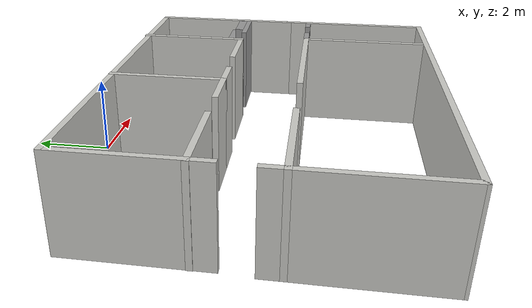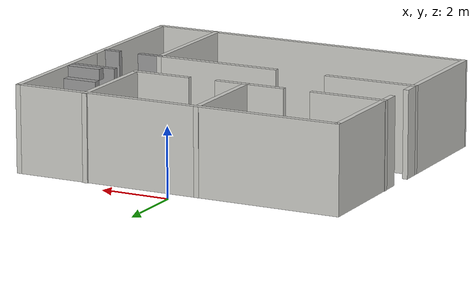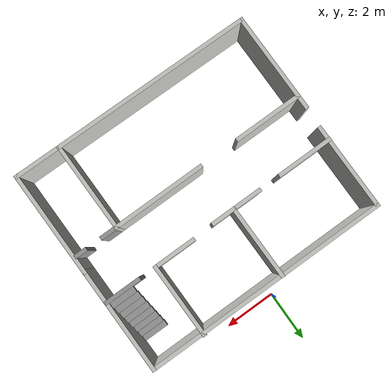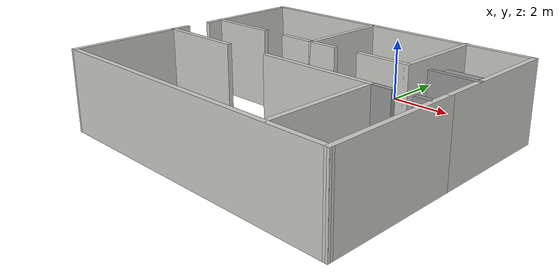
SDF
<?xml version='1.0'?>
<sdf version='1.6'>
  <model name='hospital'>
    <pose frame=''>0.053193 -4.63678 0 0 -0 0</pose>
    <link name='Stairs_4'>
      <visual name='Stairs_4_Visual_0'>
        <pose frame=''>4.23681 3.12803 0.15625 0 -0 0</pose>
        <geometry>
          <box>
            <size>1 0.2375 0.3125</size>
          </box>
        </geometry>
        <material>
          <script>
            <uri>file://media/materials/scripts/gazebo.material</uri>
            <name>Gazebo/Grey</name>
          </script>
          <ambient>1 1 1 1</ambient>
        </material>
        <meta>
          <layer>0</layer>
        </meta>
      </visual>
      <collision name='Stairs_4_Collision_0'>
        <geometry>
          <box>
            <size>1 0.2375 0.3125</size>
          </box>
        </geometry>
        <pose frame=''>4.23681 3.12803 0.15625 0 -0 0</pose>
      </collision>
      <visual name='Stairs_4_Visual_1'>
        <pose frame=''>4.23681 2.89053 0.46875 0 -0 0</pose>
        <geometry>
          <box>
            <size>1 0.2375 0.3125</size>
          </box>
        </geometry>
        <material>
          <script>
            <uri>file://media/materials/scripts/gazebo.material</uri>
            <name>Gazebo/Grey</name>
          </script>
          <ambient>1 1 1 1</ambient>
        </material>
        <meta>
          <layer>0</layer>
        </meta>
      </visual>
      <collision name='Stairs_4_Collision_1'>
        <geometry>
          <box>
            <size>1 0.2375 0.3125</size>
          </box>
        </geometry>
        <pose frame=''>4.23681 2.89053 0.46875 0 -0 0</pose>
      </collision>
      <visual name='Stairs_4_Visual_2'>
        <pose frame=''>4.23681 2.65303 0.78125 0 -0 0</pose>
        <geometry>
          <box>
            <size>1 0.2375 0.3125</size>
          </box>
        </geometry>
        <material>
          <script>
            <uri>file://media/materials/scripts/gazebo.material</uri>
            <name>Gazebo/Grey</name>
          </script>
          <ambient>1 1 1 1</ambient>
        </material>
        <meta>
          <layer>0</layer>
        </meta>
      </visual>
      <collision name='Stairs_4_Collision_2'>
        <geometry>
          <box>
            <size>1 0.2375 0.3125</size>
          </box>
        </geometry>
        <pose frame=''>4.23681 2.65303 0.78125 0 -0 0</pose>
      </collision>
      <visual name='Stairs_4_Visual_3'>
        <pose frame=''>4.23681 2.41553 1.09375 0 -0 0</pose>
        <geometry>
          <box>
            <size>1 0.2375 0.3125</size>
          </box>
        </geometry>
        <material>
          <script>
            <uri>file://media/materials/scripts/gazebo.material</uri>
            <name>Gazebo/Grey</name>
          </script>
          <ambient>1 1 1 1</ambient>
        </material>
        <meta>
          <layer>0</layer>
        </meta>
      </visual>
      <collision name='Stairs_4_Collision_3'>
        <geometry>
          <box>
            <size>1 0.2375 0.3125</size>
          </box>
        </geometry>
        <pose frame=''>4.23681 2.41553 1.09375 0 -0 0</pose>
      </collision>
      <visual name='Stairs_4_Visual_4'>
        <pose frame=''>4.23681 2.17803 1.40625 0 -0 0</pose>
        <geometry>
          <box>
            <size>1 0.2375 0.3125</size>
          </box>
        </geometry>
        <material>
          <script>
            <uri>file://media/materials/scripts/gazebo.material</uri>
            <name>Gazebo/Grey</name>
          </script>
          <ambient>1 1 1 1</ambient>
        </material>
        <meta>
          <layer>0</layer>
        </meta>
      </visual>
      <collision name='Stairs_4_Collision_4'>
        <geometry>
          <box>
            <size>1 0.2375 0.3125</size>
          </box>
        </geometry>
        <pose frame=''>4.23681 2.17803 1.40625 0 -0 0</pose>
      </collision>
      <visual name='Stairs_4_Visual_5'>
        <pose frame=''>4.23681 1.94053 1.71875 0 -0 0</pose>
        <geometry>
          <box>
            <size>1 0.2375 0.3125</size>
          </box>
        </geometry>
        <material>
          <script>
            <uri>file://media/materials/scripts/gazebo.material</uri>
            <name>Gazebo/Grey</name>
          </script>
          <ambient>1 1 1 1</ambient>
        </material>
        <meta>
          <layer>0</layer>
        </meta>
      </visual>
      <collision name='Stairs_4_Collision_5'>
        <geometry>
          <box>
            <size>1 0.2375 0.3125</size>
          </box>
        </geometry>
        <pose frame=''>4.23681 1.94053 1.71875 0 -0 0</pose>
      </collision>
      <visual name='Stairs_4_Visual_6'>
        <pose frame=''>4.23681 1.70303 2.03125 0 -0 0</pose>
        <geometry>
          <box>
            <size>1 0.2375 0.3125</size>
          </box>
        </geometry>
        <material>
          <script>
            <uri>file://media/materials/scripts/gazebo.material</uri>
            <name>Gazebo/Grey</name>
          </script>
          <ambient>1 1 1 1</ambient>
        </material>
        <meta>
          <layer>0</layer>
        </meta>
      </visual>
      <collision name='Stairs_4_Collision_6'>
        <geometry>
          <box>
            <size>1 0.2375 0.3125</size>
          </box>
        </geometry>
        <pose frame=''>4.23681 1.70303 2.03125 0 -0 0</pose>
      </collision>
      <visual name='Stairs_4_Visual_7'>
        <pose frame=''>4.23681 1.46553 2.34375 0 -0 0</pose>
        <geometry>
          <box>
            <size>1 0.2375 0.3125</size>
          </box>
        </geometry>
        <material>
          <script>
            <uri>file://media/materials/scripts/gazebo.material</uri>
            <name>Gazebo/Grey</name>
          </script>
          <ambient>1 1 1 1</ambient>
        </material>
        <meta>
          <layer>0</layer>
        </meta>
      </visual>
      <collision name='Stairs_4_Collision_7'>
        <geometry>
          <box>
            <size>1 0.2375 0.3125</size>
          </box>
        </geometry>
        <pose frame=''>4.23681 1.46553 2.34375 0 -0 0</pose>
      </collision>
    </link>
    <link name='Wall_104'>
      <collision name='Wall_104_Collision'>
        <geometry>
          <box>
            <size>2.25 0.15 2.5</size>
          </box>
        </geometry>
        <pose frame=''>0 0 1.25 0 -0 0</pose>
      </collision>
      <visual name='Wall_104_Visual'>
        <pose frame=''>0 0 1.25 0 -0 0</pose>
        <geometry>
          <box>
            <size>2.25 0.15 2.5</size>
          </box>
        </geometry>
        <material>
          <script>
            <uri>file://media/materials/scripts/gazebo.material</uri>
            <name>Gazebo/CeilingTiled</name>
          </script>
          <ambient>1 1 1 1</ambient>
        </material>
        <meta>
          <layer>0</layer>
        </meta>
      </visual>
      <pose frame=''>-3.73681 1.23405 0 0 -0 0</pose>
    </link>
    <link name='Wall_106'>
      <collision name='Wall_106_Collision'>
        <geometry>
          <box>
            <size>1.25 0.15 2.5</size>
          </box>
        </geometry>
        <pose frame=''>0 0 1.25 0 -0 0</pose>
      </collision>
      <visual name='Wall_106_Visual'>
        <pose frame=''>0 0 1.25 0 -0 0</pose>
        <geometry>
          <box>
            <size>1.25 0.15 2.5</size>
          </box>
        </geometry>
        <material>
          <script>
            <uri>file://media/materials/scripts/gazebo.material</uri>
            <name>Gazebo/CeilingTiled</name>
          </script>
          <ambient>1 1 1 1</ambient>
        </material>
        <meta>
          <layer>0</layer>
        </meta>
      </visual>
      <pose frame=''>-1.19681 1.23405 0 0 -0 0</pose>
    </link>
    <link name='Wall_107'>
      <collision name='Wall_107_Collision'>
        <geometry>
          <box>
            <size>3 0.15 2.5</size>
          </box>
        </geometry>
        <pose frame=''>0 0 1.25 0 -0 0</pose>
      </collision>
      <visual name='Wall_107_Visual'>
        <pose frame=''>0 0 1.25 0 -0 0</pose>
        <geometry>
          <box>
            <size>3 0.15 2.5</size>
          </box>
        </geometry>
        <material>
          <script>
            <uri>file://media/materials/scripts/gazebo.material</uri>
            <name>Gazebo/CeilingTiled</name>
          </script>
          <ambient>1 1 1 1</ambient>
        </material>
        <meta>
          <layer>0</layer>
        </meta>
      </visual>
      <pose frame=''>-0.646807 2.65905 0 0 -0 1.5708</pose>
    </link>
    <link name='Wall_109'>
      <collision name='Wall_109_Collision'>
        <geometry>
          <box>
            <size>1 0.15 2.5</size>
          </box>
        </geometry>
        <pose frame=''>0 0 1.25 0 -0 0</pose>
      </collision>
      <visual name='Wall_109_Visual'>
        <pose frame=''>0 0 1.25 0 -0 0</pose>
        <geometry>
          <box>
            <size>1 0.15 2.5</size>
          </box>
        </geometry>
        <material>
          <script>
            <uri>file://media/materials/scripts/gazebo.material</uri>
            <name>Gazebo/CeilingTiled</name>
          </script>
          <ambient>1 1 1 1</ambient>
        </material>
        <meta>
          <layer>0</layer>
        </meta>
      </visual>
      <pose frame=''>-0.221807 1.23405 0 0 -0 0</pose>
    </link>
    <link name='Wall_111'>
      <collision name='Wall_111_Collision'>
        <geometry>
          <box>
            <size>1.75 0.15 2.5</size>
          </box>
        </geometry>
        <pose frame=''>0 0 1.25 0 -0 0</pose>
      </collision>
      <visual name='Wall_111_Visual'>
        <pose frame=''>0 0 1.25 0 -0 0</pose>
        <geometry>
          <box>
            <size>1.75 0.15 2.5</size>
          </box>
        </geometry>
        <material>
          <script>
            <uri>file://media/materials/scripts/gazebo.material</uri>
            <name>Gazebo/CeilingTiled</name>
          </script>
          <ambient>1 1 1 1</ambient>
        </material>
        <meta>
          <layer>0</layer>
        </meta>
      </visual>
      <pose frame=''>1.93319 1.27405 0 0 -0 0</pose>
    </link>
    <link name='Wall_112'>
      <collision name='Wall_112_Collision'>
        <geometry>
          <box>
            <size>3 0.15 2.5</size>
          </box>
        </geometry>
        <pose frame=''>0 0 1.25 0 -0 0</pose>
      </collision>
      <visual name='Wall_112_Visual'>
        <pose frame=''>0 0 1.25 0 -0 0</pose>
        <geometry>
          <box>
            <size>3 0.15 2.5</size>
          </box>
        </geometry>
        <material>
          <script>
            <uri>file://media/materials/scripts/gazebo.material</uri>
            <name>Gazebo/CeilingTiled</name>
          </script>
          <ambient>1 1 1 1</ambient>
        </material>
        <meta>
          <layer>0</layer>
        </meta>
      </visual>
      <pose frame=''>2.73319 2.69905 0 0 -0 1.5708</pose>
    </link>
    <link name='Wall_114'>
      <collision name='Wall_114_Collision'>
        <geometry>
          <box>
            <size>1.5 0.15 2.5</size>
          </box>
        </geometry>
        <pose frame=''>0 0 1.25 0 -0 0</pose>
      </collision>
      <visual name='Wall_114_Visual'>
        <pose frame=''>0 0 1.25 0 -0 0</pose>
        <geometry>
          <box>
            <size>1.5 0.15 2.5</size>
          </box>
        </geometry>
        <material>
          <script>
            <uri>file://media/materials/scripts/gazebo.material</uri>
            <name>Gazebo/Grey</name>
          </script>
          <ambient>1 1 1 1</ambient>
        </material>
        <meta>
          <layer>0</layer>
        </meta>
      </visual>
      <pose frame=''>4.13819 1.27405 0 0 -0 3.14159</pose>
    </link>
    <link name='Wall_116'>
      <collision name='Wall_116_Collision'>
        <geometry>
          <box>
            <size>4 0.15 2.5</size>
          </box>
        </geometry>
        <pose frame=''>0 0 1.25 0 -0 0</pose>
      </collision>
      <visual name='Wall_116_Visual'>
        <pose frame=''>0 0 1.25 0 -0 0</pose>
        <geometry>
          <box>
            <size>4 0.15 2.5</size>
          </box>
        </geometry>
        <material>
          <script>
            <uri>file://media/materials/scripts/gazebo.material</uri>
            <name>Gazebo/CeilingTiled</name>
          </script>
          <ambient>1 1 1 1</ambient>
        </material>
        <meta>
          <layer>0</layer>
        </meta>
      </visual>
      <pose frame=''>-4.82681 -2.09095 0 0 -0 -1.5708</pose>
    </link>
    <link name='Wall_120'>
      <collision name='Wall_120_Collision'>
        <geometry>
          <box>
            <size>4.25 0.15 2.5</size>
          </box>
        </geometry>
        <pose frame=''>0 0 1.25 0 -0 0</pose>
      </collision>
      <visual name='Wall_120_Visual'>
        <pose frame=''>0 0 1.25 0 -0 0</pose>
        <geometry>
          <box>
            <size>4.25 0.15 2.5</size>
          </box>
        </geometry>
        <material>
          <script>
            <uri>file://media/materials/scripts/gazebo.material</uri>
            <name>Gazebo/CeilingTiled</name>
          </script>
          <ambient>1 1 1 1</ambient>
        </material>
        <meta>
          <layer>0</layer>
        </meta>
      </visual>
      <pose frame=''>4.82681 -2.07322 0 0 -0 -1.5708</pose>
    </link>
    <link name='Wall_121'>
      <collision name='Wall_121_Collision'>
        <geometry>
          <box>
            <size>9.80421 0.15 2.5</size>
          </box>
        </geometry>
        <pose frame=''>0 0 1.25 0 -0 0</pose>
      </collision>
      <visual name='Wall_121_Visual'>
        <pose frame=''>0 0 1.25 0 -0 0</pose>
        <geometry>
          <box>
            <size>9.80421 0.15 2.5</size>
          </box>
        </geometry>
        <material>
          <script>
            <uri>file://media/materials/scripts/gazebo.material</uri>
            <name>Gazebo/CeilingTiled</name>
          </script>
          <ambient>1 1 1 1</ambient>
        </material>
        <meta>
          <layer>0</layer>
        </meta>
      </visual>
      <pose frame=''>0 -4.06959 0 0 -0 3.13048</pose>
    </link>
    <link name='Wall_131'>
      <collision name='Wall_131_Collision'>
        <geometry>
          <box>
            <size>3.58 0.15 2.5</size>
          </box>
        </geometry>
        <pose frame=''>0 0 1.25 0 -0 0</pose>
      </collision>
      <visual name='Wall_131_Visual'>
        <pose frame=''>0 0 1.25 0 -0 0</pose>
        <geometry>
          <box>
            <size>3.58 0.15 2.5</size>
          </box>
        </geometry>
        <material>
          <script>
            <uri>file://media/materials/scripts/gazebo.material</uri>
            <name>Gazebo/CeilingTiled</name>
          </script>
          <ambient>1 1 1 1</ambient>
        </material>
        <meta>
          <layer>0</layer>
        </meta>
      </visual>
      <pose frame=''>3.02319 -2.36095 0 0 -0 -1.5708</pose>
    </link>
    <link name='Wall_135'>
      <collision name='Wall_135_Collision'>
        <geometry>
          <box>
            <size>0.75 0.15 2.5</size>
          </box>
        </geometry>
        <pose frame=''>0 0 1.25 0 -0 0</pose>
      </collision>
      <visual name='Wall_135_Visual'>
        <pose frame=''>0 0 1.25 0 -0 0</pose>
        <geometry>
          <box>
            <size>0.75 0.15 2.5</size>
          </box>
        </geometry>
        <material>
          <script>
            <uri>file://media/materials/scripts/gazebo.material</uri>
            <name>Gazebo/Grey</name>
          </script>
          <ambient>1 1 1 1</ambient>
        </material>
        <meta>
          <layer>0</layer>
        </meta>
      </visual>
      <pose frame=''>3.32319 -0.645954 0 0 -0 0</pose>
    </link>
    <link name='Wall_137'>
      <collision name='Wall_137_Collision'>
        <geometry>
          <box>
            <size>0.5 0.15 2.5</size>
          </box>
        </geometry>
        <pose frame=''>0 0 1.25 0 -0 0</pose>
      </collision>
      <visual name='Wall_137_Visual'>
        <pose frame=''>0 0 1.25 0 -0 0</pose>
        <geometry>
          <box>
            <size>0.5 0.15 2.5</size>
          </box>
        </geometry>
        <material>
          <script>
            <uri>file://media/materials/scripts/gazebo.material</uri>
            <name>Gazebo/Grey</name>
          </script>
          <ambient>1 1 1 1</ambient>
        </material>
        <meta>
          <layer>0</layer>
        </meta>
      </visual>
      <pose frame=''>4.54819 -0.645954 0 0 -0 0</pose>
    </link>
    <link name='Wall_143'>
      <collision name='Wall_143_Collision'>
        <geometry>
          <box>
            <size>3.75 0.15 2.5</size>
          </box>
        </geometry>
        <pose frame=''>0 0 1.25 0 -0 0</pose>
      </collision>
      <visual name='Wall_143_Visual'>
        <pose frame=''>0 0 1.25 0 -0 0</pose>
        <geometry>
          <box>
            <size>3.75 0.15 2.5</size>
          </box>
        </geometry>
        <material>
          <script>
            <uri>file://media/materials/scripts/gazebo.material</uri>
            <name>Gazebo/CeilingTiled</name>
          </script>
          <ambient>1 1 1 1</ambient>
        </material>
        <meta>
          <layer>0</layer>
        </meta>
      </visual>
      <pose frame=''>1.22319 -0.645954 0 0 -0 3.14159</pose>
    </link>
    <link name='Wall_145'>
      <collision name='Wall_145_Collision'>
        <geometry>
          <box>
            <size>2.75 0.15 2.5</size>
          </box>
        </geometry>
        <pose frame=''>0 0 1.25 0 -0 0</pose>
      </collision>
      <visual name='Wall_145_Visual'>
        <pose frame=''>0 0 1.25 0 -0 0</pose>
        <geometry>
          <box>
            <size>2.75 0.15 2.5</size>
          </box>
        </geometry>
        <material>
          <script>
            <uri>file://media/materials/scripts/gazebo.material</uri>
            <name>Gazebo/CeilingTiled</name>
          </script>
          <ambient>1 1 1 1</ambient>
        </material>
        <meta>
          <layer>0</layer>
        </meta>
      </visual>
      <pose frame=''>-3.52681 -0.645954 0 0 -0 3.14159</pose>
    </link>
    <link name='Wall_21'>
      <collision name='Wall_21_Collision'>
        <geometry>
          <box>
            <size>9.75 0.15 2.5</size>
          </box>
        </geometry>
        <pose frame=''>0 0 1.25 0 -0 0</pose>
      </collision>
      <visual name='Wall_21_Visual'>
        <pose frame=''>0 0 1.25 0 -0 0</pose>
        <geometry>
          <box>
            <size>9.75 0.15 2.5</size>
          </box>
        </geometry>
        <material>
          <script>
            <uri>file://media/materials/scripts/gazebo.material</uri>
            <name>Gazebo/CeilingTiled</name>
          </script>
          <ambient>1 1 1 1</ambient>
        </material>
        <meta>
          <layer>0</layer>
        </meta>
      </visual>
      <pose frame=''>0.026807 4.07678 0 0 -0 3.14159</pose>
    </link>
    <link name='Wall_34'>
      <collision name='Wall_34_Collision'>
        <geometry>
          <box>
            <size>4.25 0.15 2.5</size>
          </box>
        </geometry>
        <pose frame=''>0 0 1.25 0 -0 0</pose>
      </collision>
      <visual name='Wall_34_Visual'>
        <pose frame=''>0 0 1.25 0 -0 0</pose>
        <geometry>
          <box>
            <size>4.25 0.15 2.5</size>
          </box>
        </geometry>
        <material>
          <script>
            <uri>file://media/materials/scripts/gazebo.material</uri>
            <name>Gazebo/CeilingTiled</name>
          </script>
          <ambient>1 1 1 1</ambient>
        </material>
        <meta>
          <layer>0</layer>
        </meta>
      </visual>
      <pose frame=''>4.82681 2.02678 0 0 -0 -1.5708</pose>
    </link>
    <link name='Wall_38'>
      <collision name='Wall_38_Collision'>
        <geometry>
          <box>
            <size>3.5 0.15 2.5</size>
          </box>
        </geometry>
        <pose frame=''>0 0 1.25 0 -0 0</pose>
      </collision>
      <visual name='Wall_38_Visual'>
        <pose frame=''>0 0 1.25 0 -0 0</pose>
        <geometry>
          <box>
            <size>3.5 0.15 2.5</size>
          </box>
        </geometry>
        <material>
          <script>
            <uri>file://media/materials/scripts/gazebo.material</uri>
            <name>Gazebo/CeilingTiled</name>
          </script>
          <ambient>1 1 1 1</ambient>
        </material>
        <meta>
          <layer>0</layer>
        </meta>
      </visual>
      <pose frame=''>-4.77319 2.40178 0 0 -0 1.5708</pose>
    </link>
    <static>1</static>
  </model>
</sdf>
